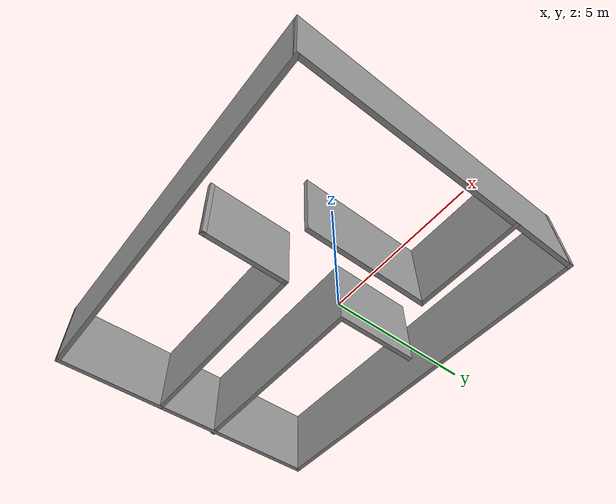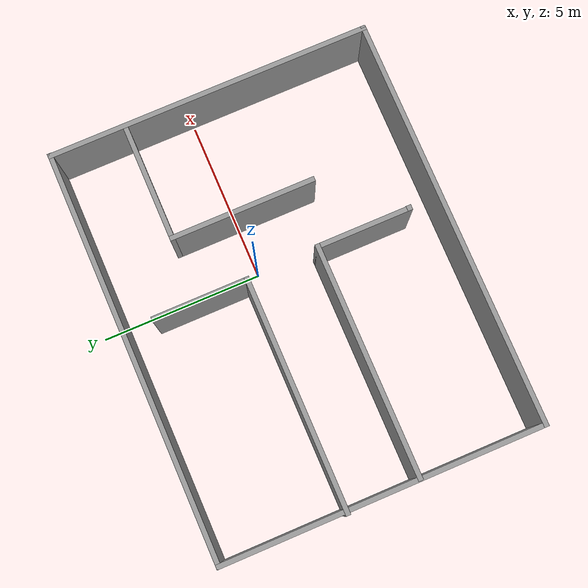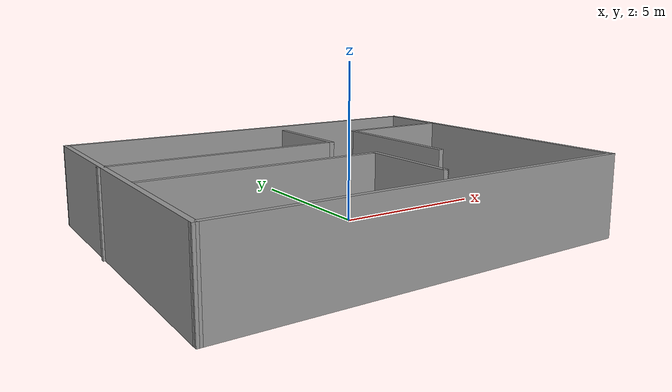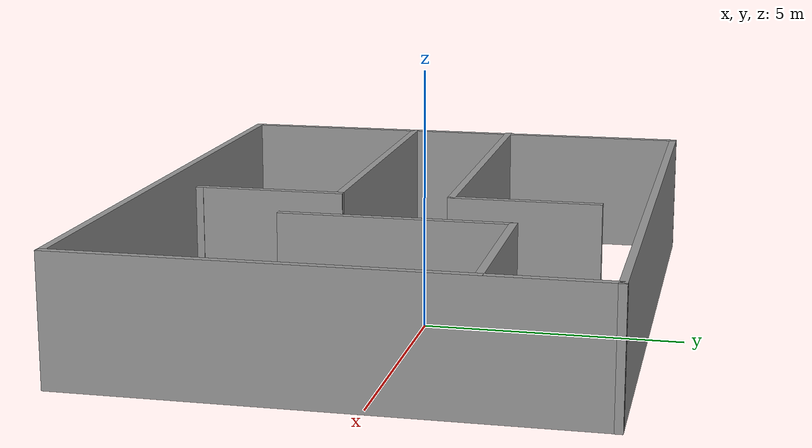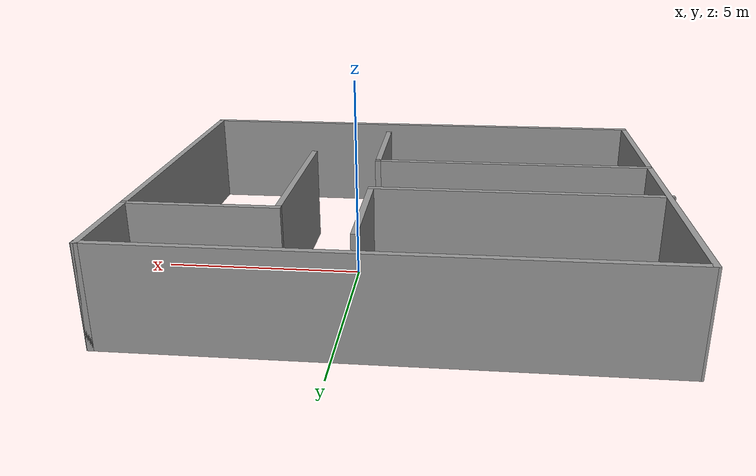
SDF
<?xml version='1.0'?>
<sdf version='1.7'>
  <model name='room'>
    <pose>-1.17205 -0.674469 0 0 -0 0</pose>
    <link name='Wall_12'>
      <collision name='Wall_12_Collision'>
        <geometry>
          <box>
            <size>12.75 0.15 2.5</size>
          </box>
        </geometry>
        <pose>0 0 1.25 0 -0 0</pose>
      </collision>
      <visual name='Wall_12_Visual'>
        <pose>0 0 1.25 0 -0 0</pose>
        <geometry>
          <box>
            <size>12.75 0.15 2.5</size>
          </box>
        </geometry>
        <material>
          <script>
            <uri>file://media/materials/scripts/gazebo.material</uri>
            <name>Gazebo/Grey</name>
          </script>
          <ambient>1 1 1 1</ambient>
        </material>
        <meta>
          <layer>0</layer>
        </meta>
      </visual>
      <pose>0.021995 -4.925 0 0 -0 0</pose>
    </link>
    <link name='Wall_13'>
      <collision name='Wall_13_Collision'>
        <geometry>
          <box>
            <size>10 0.15 2.5</size>
          </box>
        </geometry>
        <pose>0 0 1.25 0 -0 0</pose>
      </collision>
      <visual name='Wall_13_Visual'>
        <pose>0 0 1.25 0 -0 0</pose>
        <geometry>
          <box>
            <size>10 0.15 2.5</size>
          </box>
        </geometry>
        <material>
          <script>
            <uri>file://media/materials/scripts/gazebo.material</uri>
            <name>Gazebo/Grey</name>
          </script>
          <ambient>1 1 1 1</ambient>
        </material>
        <meta>
          <layer>0</layer>
        </meta>
      </visual>
      <pose>6.322 0 0 0 -0 1.5708</pose>
    </link>
    <link name='Wall_14'>
      <collision name='Wall_14_Collision'>
        <geometry>
          <box>
            <size>0.16 0.15 2.5</size>
          </box>
        </geometry>
        <pose>0 0 1.25 0 -0 0</pose>
      </collision>
      <visual name='Wall_14_Visual'>
        <pose>0 0 1.25 0 -0 0</pose>
        <geometry>
          <box>
            <size>0.16 0.15 2.5</size>
          </box>
        </geometry>
        <material>
          <script>
            <uri>file://media/materials/scripts/gazebo.material</uri>
            <name>Gazebo/Grey</name>
          </script>
          <ambient>1 1 1 1</ambient>
        </material>
        <meta>
          <layer>0</layer>
        </meta>
      </visual>
      <pose>6.327 4.925 0 0 -0 0</pose>
    </link>
    <link name='Wall_15'>
      <collision name='Wall_15_Collision'>
        <geometry>
          <box>
            <size>12.75 0.15 2.5</size>
          </box>
        </geometry>
        <pose>0 0 1.25 0 -0 0</pose>
      </collision>
      <visual name='Wall_15_Visual'>
        <pose>0 0 1.25 0 -0 0</pose>
        <geometry>
          <box>
            <size>12.75 0.15 2.5</size>
          </box>
        </geometry>
        <material>
          <script>
            <uri>file://media/materials/scripts/gazebo.material</uri>
            <name>Gazebo/Grey</name>
          </script>
          <ambient>1 1 1 1</ambient>
        </material>
        <meta>
          <layer>0</layer>
        </meta>
      </visual>
      <pose>0.031995 4.925 0 0 -0 3.14159</pose>
    </link>
    <link name='Wall_16'>
      <collision name='Wall_16_Collision'>
        <geometry>
          <box>
            <size>10 0.15 2.5</size>
          </box>
        </geometry>
        <pose>0 0 1.25 0 -0 0</pose>
      </collision>
      <visual name='Wall_16_Visual'>
        <pose>0 0 1.25 0 -0 0</pose>
        <geometry>
          <box>
            <size>10 0.15 2.5</size>
          </box>
        </geometry>
        <material>
          <script>
            <uri>file://media/materials/scripts/gazebo.material</uri>
            <name>Gazebo/Grey</name>
          </script>
          <ambient>1 1 1 1</ambient>
        </material>
        <meta>
          <layer>0</layer>
        </meta>
      </visual>
      <pose>-6.273 0 0 0 -0 -1.57181</pose>
    </link>
    <link name='Wall_19'>
      <collision name='Wall_19_Collision'>
        <geometry>
          <box>
            <size>7.25 0.15 2.5</size>
          </box>
        </geometry>
        <pose>0 0 1.25 0 -0 0</pose>
      </collision>
      <visual name='Wall_19_Visual'>
        <pose>0 0 1.25 0 -0 0</pose>
        <geometry>
          <box>
            <size>7.25 0.15 2.5</size>
          </box>
        </geometry>
        <material>
          <script>
            <uri>file://media/materials/scripts/gazebo.material</uri>
            <name>Gazebo/Grey</name>
          </script>
          <ambient>1 1 1 1</ambient>
        </material>
        <meta>
          <layer>0</layer>
        </meta>
      </visual>
      <pose>-2.70188 -1.1051 0 0 -0 0</pose>
    </link>
    <link name='Wall_20'>
      <collision name='Wall_20_Collision'>
        <geometry>
          <box>
            <size>3 0.15 2.5</size>
          </box>
        </geometry>
        <pose>0 0 1.25 0 -0 0</pose>
      </collision>
      <visual name='Wall_20_Visual'>
        <pose>0 0 1.25 0 -0 0</pose>
        <geometry>
          <box>
            <size>3 0.15 2.5</size>
          </box>
        </geometry>
        <material>
          <script>
            <uri>file://media/materials/scripts/gazebo.material</uri>
            <name>Gazebo/Grey</name>
          </script>
          <ambient>1 1 1 1</ambient>
        </material>
        <meta>
          <layer>0</layer>
        </meta>
      </visual>
      <pose>0.848118 -2.5301 0 0 -0 -1.5708</pose>
    </link>
    <link name='Wall_21'>
      <collision name='Wall_21_Collision'>
        <geometry>
          <box>
            <size>0.16 0.15 2.5</size>
          </box>
        </geometry>
        <pose>0 0 1.25 0 -0 0</pose>
      </collision>
      <visual name='Wall_21_Visual'>
        <pose>0 0 1.25 0 -0 0</pose>
        <geometry>
          <box>
            <size>0.16 0.15 2.5</size>
          </box>
        </geometry>
        <material>
          <script>
            <uri>file://media/materials/scripts/gazebo.material</uri>
            <name>Gazebo/Grey</name>
          </script>
          <ambient>1 1 1 1</ambient>
        </material>
        <meta>
          <layer>0</layer>
        </meta>
      </visual>
      <pose>0.853118 -3.9551 0 0 -0 0</pose>
    </link>
    <link name='Wall_23'>
      <collision name='Wall_23_Collision'>
        <geometry>
          <box>
            <size>7.25 0.15 2.5</size>
          </box>
        </geometry>
        <pose>0 0 1.25 0 -0 0</pose>
      </collision>
      <visual name='Wall_23_Visual'>
        <pose>0 0 1.25 0 -0 0</pose>
        <geometry>
          <box>
            <size>7.25 0.15 2.5</size>
          </box>
        </geometry>
        <material>
          <script>
            <uri>file://media/materials/scripts/gazebo.material</uri>
            <name>Gazebo/Grey</name>
          </script>
          <ambient>1 1 1 1</ambient>
        </material>
        <meta>
          <layer>0</layer>
        </meta>
      </visual>
      <pose>-2.782 1.11432 0 0 -0 0</pose>
    </link>
    <link name='Wall_24'>
      <collision name='Wall_24_Collision'>
        <geometry>
          <box>
            <size>3 0.15 2.5</size>
          </box>
        </geometry>
        <pose>0 0 1.25 0 -0 0</pose>
      </collision>
      <visual name='Wall_24_Visual'>
        <pose>0 0 1.25 0 -0 0</pose>
        <geometry>
          <box>
            <size>3 0.15 2.5</size>
          </box>
        </geometry>
        <material>
          <script>
            <uri>file://media/materials/scripts/gazebo.material</uri>
            <name>Gazebo/Grey</name>
          </script>
          <ambient>1 1 1 1</ambient>
        </material>
        <meta>
          <layer>0</layer>
        </meta>
      </visual>
      <pose>0.768005 2.53932 0 0 -0 1.5708</pose>
    </link>
    <link name='Wall_26'>
      <collision name='Wall_26_Collision'>
        <geometry>
          <box>
            <size>3.75 0.15 2.5</size>
          </box>
        </geometry>
        <pose>0 0 1.25 0 -0 0</pose>
      </collision>
      <visual name='Wall_26_Visual'>
        <pose>0 0 1.25 0 -0 0</pose>
        <geometry>
          <box>
            <size>3.75 0.15 2.5</size>
          </box>
        </geometry>
        <material>
          <script>
            <uri>file://media/materials/scripts/gazebo.material</uri>
            <name>Gazebo/Grey</name>
          </script>
          <ambient>1 1 1 1</ambient>
        </material>
        <meta>
          <layer>0</layer>
        </meta>
      </visual>
      <pose>4.51332 2.61846 0 0 -0 3.14159</pose>
    </link>
    <link name='Wall_27'>
      <collision name='Wall_27_Collision'>
        <geometry>
          <box>
            <size>4.5 0.15 2.5</size>
          </box>
        </geometry>
        <pose>0 0 1.25 0 -0 0</pose>
      </collision>
      <visual name='Wall_27_Visual'>
        <pose>0 0 1.25 0 -0 0</pose>
        <geometry>
          <box>
            <size>4.5 0.15 2.5</size>
          </box>
        </geometry>
        <material>
          <script>
            <uri>file://media/materials/scripts/gazebo.material</uri>
            <name>Gazebo/Grey</name>
          </script>
          <ambient>1 1 1 1</ambient>
        </material>
        <meta>
          <layer>0</layer>
        </meta>
      </visual>
      <pose>2.71332 0.443461 0 0 -0 -1.5708</pose>
    </link>
    <static>1</static>
  </model>
</sdf>
